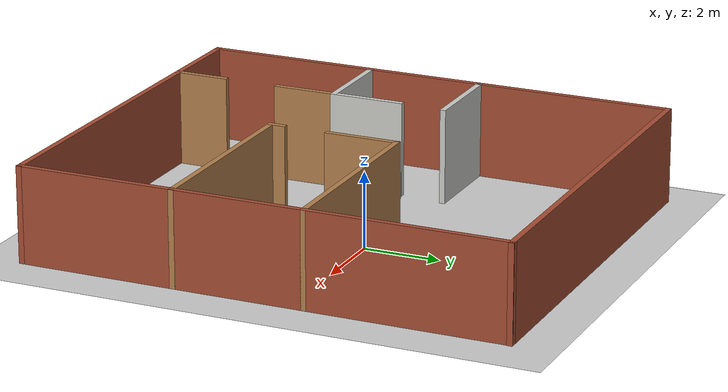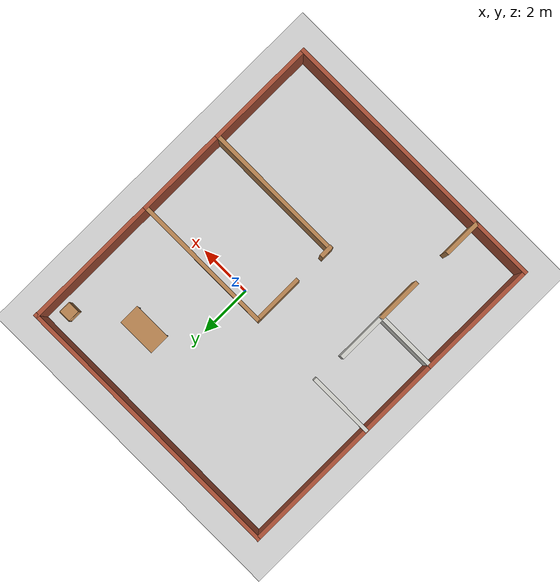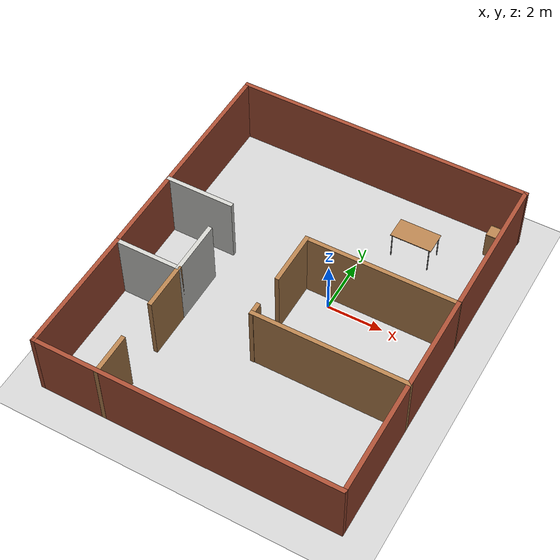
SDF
<sdf version="1.6">
 <world name="default">
  <model name="ground_plane">
   <static>1</static>
   <link name="link">
    <collision name="collision">
     <geometry><plane><normal>0 0 1</normal><size>100 100</size></plane></geometry>
     <surface>
      <contact><collide_bitmask>65535</collide_bitmask></contact>
      <friction><ode><mu>100</mu><mu2>50</mu2></ode></friction>
     </surface>
    </collision>
    <visual name="visual">
     <cast_shadows>0</cast_shadows>
     <geometry><plane><normal>0 0 1</normal><size>100 100</size></plane></geometry>
     <material>
      <script><uri>file://media/materials/scripts/gazebo.material</uri><name>Gazebo/Grey</name></script>
     </material>
    </visual>
   </link>
  </model>
  <model name="mybuilding">
   <pose>-0.984529 -0.77435 0 0 -0 0</pose>
   <link name="Wall_1">
    <collision name="Wall_1_Collision">
     <geometry><box><size>10.75 0.15 2.5</size></box></geometry>
     <pose>0 0 1.25 0 -0 0</pose>
    </collision>
    <visual name="Wall_1_Visual">
     <pose>0 0 1.25 0 -0 0</pose>
     <geometry><box><size>10.75 0.15 2.5</size></box></geometry>
     <material>
      <script><uri>file://media/materials/scripts/gazebo.material</uri><name>Gazebo/Bricks</name></script>
      <ambient>1 0.764706 0.305882 1</ambient>
     </material>
     <meta><layer>0</layer></meta>
    </visual>
    <pose>0.007558 6.36268 0 0 -0 0</pose>
   </link>
   <link name="Wall_2">
    <collision name="Wall_2_Collision">
     <geometry><box><size>5.34469 0.15 2.5</size></box></geometry>
     <pose>0 0 1.25 0 -0 0</pose>
    </collision>
    <visual name="Wall_2_Visual">
     <pose>0 0 1.25 0 -0 0</pose>
     <geometry><box><size>5.34469 0.15 2.5</size></box></geometry>
     <material>
      <script><uri>file://media/materials/scripts/gazebo.material</uri><name>Gazebo/Bricks</name></script>
      <ambient>1 0.764706 0.305882 1</ambient>
     </material>
     <meta><layer>0</layer></meta>
    </visual>
    <pose>5.29235 3.76538 0 0 -0 -1.5708</pose>
   </link>
   <link name="Wall_20">
    <collision name="Wall_20_Collision">
     <geometry><box><size>2.46292 0.15 2.5</size></box></geometry>
     <pose>0 0 1.25 0 -0 0</pose>
    </collision>
    <visual name="Wall_20_Visual">
     <pose>0 0 1.25 0 -0 0</pose>
     <geometry><box><size>2.46292 0.15 2.5</size></box></geometry>
     <material>
      <script><uri>file://media/materials/scripts/gazebo.material</uri><name>Gazebo/CeilingTiled</name></script>
      <ambient>0.435294 0.796078 0.67451 1</ambient>
     </material>
     <meta><layer>0</layer></meta>
    </visual>
    <pose>-4.13693 -1.86591 0 0 -0 -3.14159</pose>
   </link>
   <link name="Wall_21">
    <collision name="Wall_21_Collision">
     <geometry><box><size>8.25 0.15 2.5</size></box></geometry>
     <pose>0 0 1.25 0 -0 0</pose>
    </collision>
    <visual name="Wall_21_Visual">
     <pose>0 0 1.25 0 -0 0</pose>
     <geometry><box><size>8.25 0.15 2.5</size></box></geometry>
     <material>
      <script><uri>file://media/materials/scripts/gazebo.material</uri><name>Gazebo/Bricks</name></script>
      <ambient>1 0.764706 0.305882 1</ambient>
     </material>
     <meta><layer>0</layer></meta>
    </visual>
    <pose>-5.29339 2.18409 0 0 -0 1.5708</pose>
   </link>
   <link name="Wall_23">
    <collision name="Wall_23_Collision">
     <geometry><box><size>2 0.15 2.5</size></box></geometry>
     <pose>0 0 1.25 0 -0 0</pose>
    </collision>
    <visual name="Wall_23_Visual">
     <pose>0 0 1.25 0 -0 0</pose>
     <geometry><box><size>2 0.15 2.5</size></box></geometry>
     <material>
      <script><uri>file://media/materials/scripts/gazebo.material</uri><name>Gazebo/CeilingTiled</name></script>
      <ambient>0.996078 0.47451 0.0196078 1</ambient>
     </material>
     <meta><layer>0</layer></meta>
    </visual>
    <pose>-2.98047 -0.940907 0 0 -0 1.5708</pose>
   </link>
   <link name="Wall_26">
    <collision name="Wall_26_Collision">
     <geometry><box><size>4.25 0.15 2.5</size></box></geometry>
     <pose>0 0 1.25 0 -0 0</pose>
    </collision>
    <visual name="Wall_26_Visual">
     <pose>0 0 1.25 0 -0 0</pose>
     <geometry><box><size>4.25 0.15 2.5</size></box></geometry>
     <material>
      <script><uri>file://media/materials/scripts/gazebo.material</uri><name>Gazebo/Bricks</name></script>
      <ambient>0.435294 0.796078 0.67451 1</ambient>
     </material>
     <meta><layer>0</layer></meta>
    </visual>
    <pose>5.29268 -4.30974 0 0 -0 -1.5708</pose>
   </link>
   <link name="Wall_27">
    <collision name="Wall_27_Collision">
     <geometry><box><size>10.75 0.15 2.5</size></box></geometry>
     <pose>0 0 1.25 0 -0 0</pose>
    </collision>
    <visual name="Wall_27_Visual">
     <pose>0 0 1.25 0 -0 0</pose>
     <geometry><box><size>10.75 0.15 2.5</size></box></geometry>
     <material>
      <script><uri>file://media/materials/scripts/gazebo.material</uri><name>Gazebo/Bricks</name></script>
      <ambient>0.435294 0.796078 0.67451 1</ambient>
     </material>
     <meta><layer>0</layer></meta>
    </visual>
    <pose>-0.007325 -6.35974 0 0 -0 3.14159</pose>
   </link>
   <link name="Wall_28">
    <collision name="Wall_28_Collision">
     <geometry><box><size>4.6445 0.15 2.5</size></box></geometry>
     <pose>0 0 1.25 0 -0 0</pose>
    </collision>
    <visual name="Wall_28_Visual">
     <pose>0 0 1.25 0 -0 0</pose>
     <geometry><box><size>4.6445 0.15 2.5</size></box></geometry>
     <material>
      <script><uri>file://media/materials/scripts/gazebo.material</uri><name>Gazebo/Bricks</name></script>
      <ambient>0.435294 0.796078 0.67451 1</ambient>
     </material>
     <meta><layer>0</layer></meta>
    </visual>
    <pose>-5.30036 -4.11282 0 0 -0 1.5677</pose>
   </link>
   <link name="Wall_3">
    <collision name="Wall_3_Collision">
     <geometry><box><size>5.5 0.15 2.5</size></box></geometry>
     <pose>0 0 1.25 0 -0 0</pose>
    </collision>
    <visual name="Wall_3_Visual">
     <pose>0 0 1.25 0 -0 0</pose>
     <geometry><box><size>5.5 0.15 2.5</size></box></geometry>
     <material>
      <script><uri>file://media/materials/scripts/gazebo.material</uri><name>Gazebo/Wood</name></script>
      <ambient>0.996078 0.47451 0.0196078 1</ambient>
     </material>
     <meta><layer>0</layer></meta>
    </visual>
    <pose>2.61735 1.16808 0 0 -0 3.14159</pose>
   </link>
   <link name="Wall_32">
    <collision name="Wall_32_Collision">
     <geometry><box><size>1.5 0.15 2.5</size></box></geometry>
     <pose>0 0 1.25 0 -0 0</pose>
    </collision>
    <visual name="Wall_32_Visual">
     <pose>0 0 1.25 0 -0 0</pose>
     <geometry><box><size>1.5 0.15 2.5</size></box></geometry>
     <material>
      <script><uri>file://media/materials/scripts/gazebo.material</uri><name>Gazebo/Wood</name></script>
      <ambient>0.435294 0.796078 0.67451 1</ambient>
     </material>
     <meta><layer>0</layer></meta>
    </visual>
    <pose>-2.9997 -5.68773 0 0 -0 1.5708</pose>
   </link>
   <link name="Wall_34">
    <collision name="Wall_34_Collision">
     <geometry><box><size>1.75 0.15 2.5</size></box></geometry>
     <pose>0 0 1.25 0 -0 0</pose>
    </collision>
    <visual name="Wall_34_Visual">
     <pose>0 0 1.25 0 -0 0</pose>
     <geometry><box><size>1.75 0.15 2.5</size></box></geometry>
     <material>
      <script><uri>file://media/materials/scripts/gazebo.material</uri><name>Gazebo/Wood</name></script>
      <ambient>0.435294 0.796078 0.67451 1</ambient>
     </material>
     <meta><layer>0</layer></meta>
    </visual>
    <pose>-2.98047 -2.66591 0 0 -0 -1.5708</pose>
   </link>
   <link name="Wall_36">
    <collision name="Wall_36_Collision">
     <geometry><box><size>2.5 0.15 2.5</size></box></geometry>
     <pose>0 0 1.25 0 -0 0</pose>
    </collision>
    <visual name="Wall_36_Visual">
     <pose>0 0 1.25 0 -0 0</pose>
     <geometry><box><size>2.5 0.15 2.5</size></box></geometry>
     <material>
      <script><uri>file://media/materials/scripts/gazebo.material</uri><name>Gazebo/CeilingTiled</name></script>
      <ambient>0.996078 0.47451 0.0196078 1</ambient>
     </material>
     <meta><layer>0</layer></meta>
    </visual>
    <pose>-4.09706 1.21375 0 0 -0 0</pose>
   </link>
   <link name="Wall_4">
    <collision name="Wall_4_Collision">
     <geometry><box><size>2 0.15 2.5</size></box></geometry>
     <pose>0 0 1.25 0 -0 0</pose>
    </collision>
    <visual name="Wall_4_Visual">
     <pose>0 0 1.25 0 -0 0</pose>
     <geometry><box><size>2 0.15 2.5</size></box></geometry>
     <material>
      <script><uri>file://media/materials/scripts/gazebo.material</uri><name>Gazebo/Wood</name></script>
      <ambient>0.996078 0.47451 0.0196078 1</ambient>
     </material>
     <meta><layer>0</layer></meta>
    </visual>
    <pose>-0.05765 0.243083 0 0 -0 -1.5708</pose>
   </link>
   <link name="Wall_7">
    <collision name="Wall_7_Collision">
     <geometry><box><size>0.5 0.15 2.5</size></box></geometry>
     <pose>0 0 1.25 0 -0 0</pose>
    </collision>
    <visual name="Wall_7_Visual">
     <pose>0 0 1.25 0 -0 0</pose>
     <geometry><box><size>0.5 0.15 2.5</size></box></geometry>
     <material>
      <script><uri>file://media/materials/scripts/gazebo.material</uri><name>Gazebo/Wood</name></script>
      <ambient>0.996078 0.47451 0.0196078 1</ambient>
     </material>
     <meta><layer>0</layer></meta>
    </visual>
    <pose>-0.072534 -2.09995 0 0 -0 -1.5708</pose>
   </link>
   <link name="Wall_8">
    <collision name="Wall_8_Collision">
     <geometry><box><size>5.51555 0.15 2.5</size></box></geometry>
     <pose>0 0 1.25 0 -0 0</pose>
    </collision>
    <visual name="Wall_8_Visual">
     <pose>0 0 1.25 0 -0 0</pose>
     <geometry><box><size>5.51555 0.15 2.5</size></box></geometry>
     <material>
      <script><uri>file://media/materials/scripts/gazebo.material</uri><name>Gazebo/Wood</name></script>
      <ambient>0.435294 0.796078 0.67451 1</ambient>
     </material>
     <meta><layer>0</layer></meta>
    </visual>
    <pose>2.61007 -2.25974 0 0 -0 0</pose>
   </link>
   <link name="Wall_9">
    <collision name="Wall_9_Collision">
     <geometry><box><size>3.57785 0.15 2.5</size></box></geometry>
     <pose>0 0 1.25 0 -0 0</pose>
    </collision>
    <visual name="Wall_9_Visual">
     <pose>0 0 1.25 0 -0 0</pose>
     <geometry><box><size>3.57785 0.15 2.5</size></box></geometry>
     <material>
      <script><uri>file://media/materials/scripts/gazebo.material</uri><name>Gazebo/Bricks</name></script>
      <ambient>0.996078 0.47451 0.0196078 1</ambient>
     </material>
     <meta><layer>0</layer></meta>
    </visual>
    <pose>5.29251 -0.54583 0 0 -0 1.57089</pose>
   </link>
   <static>1</static>
  </model>
  <model name="cabinet">
   <static>1</static>
   <link name="cabinet_bottom_plate">
    <inertial>
     <pose>0 0 -1 0 -0 0</pose>
     <inertia><ixx>2.05</ixx><ixy>0</ixy><ixz>0</ixz><iyy>2.05</iyy><iyz>0</iyz><izz>2.05</izz></inertia>
     <mass>25</mass>
    </inertial>
    <collision name="cabinet_bottom_plate_geom">
     <pose>0 0 0.01 0 -0 0</pose>
     <geometry><box><size>0.45 0.45 0.02</size></box></geometry>
    </collision>
    <visual name="cabinet_bottom_plate_geom_visual">
     <pose>0 0 0.01 0 -0 0</pose>
     <geometry><box><size>0.45 0.45 0.02</size></box></geometry>
     <material>
      <script><uri>file://media/materials/scripts/gazebo.material</uri><name>Gazebo/Wood</name></script>
     </material>
    </visual>
    <collision name="cabinet_bottom_plate_geom_cabinet_back_plate">
     <pose>0.235 0 0.51 0 -0 0</pose>
     <geometry><box><size>0.02 0.45 1.02</size></box></geometry>
    </collision>
    <visual name="cabinet_bottom_plate_geom_cabinet_back_plate_visual">
     <pose>0.235 0 0.51 0 -0 0</pose>
     <geometry><box><size>0.02 0.45 1.02</size></box></geometry>
     <material>
      <script><uri>file://media/materials/scripts/gazebo.material</uri><name>Gazebo/Wood</name></script>
     </material>
    </visual>
    <collision name="cabinet_bottom_plate_geom_cabinet_left_plate">
     <pose>0 0.235 0.51 0 -0 0</pose>
     <geometry><box><size>0.45 0.02 1.02</size></box></geometry>
    </collision>
    <visual name="cabinet_bottom_plate_geom_cabinet_left_plate_visual">
     <pose>0 0.235 0.51 0 -0 0</pose>
     <geometry><box><size>0.45 0.02 1.02</size></box></geometry>
     <material>
      <script><uri>file://media/materials/scripts/gazebo.material</uri><name>Gazebo/Wood</name></script>
     </material>
    </visual>
    <collision name="cabinet_bottom_plate_geom_cabinet_middle_plate">
     <pose>0 0 0.51 0 -0 0</pose>
     <geometry><box><size>0.45 0.45 0.02</size></box></geometry>
    </collision>
    <visual name="cabinet_bottom_plate_geom_cabinet_middle_plate_visual">
     <pose>0 0 0.51 0 -0 0</pose>
     <geometry><box><size>0.45 0.45 0.02</size></box></geometry>
     <material>
      <script><uri>file://media/materials/scripts/gazebo.material</uri><name>Gazebo/Wood</name></script>
     </material>
    </visual>
    <collision name="cabinet_bottom_plate_geom_cabinet_right_plate">
     <pose>0 -0.235 0.51 0 -0 0</pose>
     <geometry><box><size>0.45 0.02 1.02</size></box></geometry>
    </collision>
    <visual name="cabinet_bottom_plate_geom_cabinet_right_plate_visual">
     <pose>0 -0.235 0.51 0 -0 0</pose>
     <geometry><box><size>0.45 0.02 1.02</size></box></geometry>
     <material>
      <script><uri>file://media/materials/scripts/gazebo.material</uri><name>Gazebo/Wood</name></script>
     </material>
    </visual>
    <collision name="cabinet_bottom_plate_geom_cabinet_top_plate">
     <pose>0 0 1.01 0 -0 0</pose>
     <geometry><box><size>0.45 0.45 0.02</size></box></geometry>
    </collision>
    <visual name="cabinet_bottom_plate_geom_cabinet_top_plate_visual">
     <pose>0 0 1.01 0 -0 0</pose>
     <geometry><box><size>0.45 0.45 0.02</size></box></geometry>
     <material>
      <script><uri>file://media/materials/scripts/gazebo.material</uri><name>Gazebo/Wood</name></script>
     </material>
    </visual>
   </link>
   <pose>3.75301 4.7992 0 0 -0 0</pose>
  </model>
  <model name="table">
   <static>1</static>
   <link name="link">
    <collision name="surface">
     <pose>0 0 1 0 -0 0</pose>
     <geometry><box><size>1.5 0.8 0.03</size></box></geometry>
     <surface><friction><ode><mu>0.6</mu><mu2>0.6</mu2></ode></friction></surface>
    </collision>
    <visual name="visual1">
     <pose>0 0 1 0 -0 0</pose>
     <geometry><box><size>1.5 0.8 0.03</size></box></geometry>
     <material>
      <script><uri>file://media/materials/scripts/gazebo.material</uri><name>Gazebo/Wood</name></script>
     </material>
    </visual>
    <collision name="front_left_leg">
     <pose>0.68 0.38 0.5 0 -0 0</pose>
     <geometry><cylinder><radius>0.02</radius><length>1</length></cylinder></geometry>
    </collision>
    <visual name="front_left_leg">
     <pose>0.68 0.38 0.5 0 -0 0</pose>
     <geometry><cylinder><radius>0.02</radius><length>1</length></cylinder></geometry>
     <material>
      <script><uri>file://media/materials/scripts/gazebo.material</uri><name>Gazebo/Grey</name></script>
     </material>
    </visual>
    <collision name="front_right_leg">
     <pose>0.68 -0.38 0.5 0 -0 0</pose>
     <geometry><cylinder><radius>0.02</radius><length>1</length></cylinder></geometry>
    </collision>
    <visual name="front_right_leg">
     <pose>0.68 -0.38 0.5 0 -0 0</pose>
     <geometry><cylinder><radius>0.02</radius><length>1</length></cylinder></geometry>
     <material>
      <script><uri>file://media/materials/scripts/gazebo.material</uri><name>Gazebo/Grey</name></script>
     </material>
    </visual>
    <collision name="back_right_leg">
     <pose>-0.68 -0.38 0.5 0 -0 0</pose>
     <geometry><cylinder><radius>0.02</radius><length>1</length></cylinder></geometry>
    </collision>
    <visual name="back_right_leg">
     <pose>-0.68 -0.38 0.5 0 -0 0</pose>
     <geometry><cylinder><radius>0.02</radius><length>1</length></cylinder></geometry>
     <material>
      <script><uri>file://media/materials/scripts/gazebo.material</uri><name>Gazebo/Grey</name></script>
     </material>
    </visual>
    <collision name="back_left_leg">
     <pose>-0.68 0.38 0.5 0 -0 0</pose>
     <geometry><cylinder><radius>0.02</radius><length>1</length></cylinder></geometry>
    </collision>
    <visual name="back_left_leg">
     <pose>-0.68 0.38 0.5 0 -0 0</pose>
     <geometry><cylinder><radius>0.02</radius><length>1</length></cylinder></geometry>
     <material>
      <script><uri>file://media/materials/scripts/gazebo.material</uri><name>Gazebo/Grey</name></script>
     </material>
    </visual>
   </link>
   <pose>1.4914 3.39779 0 0 -0 0</pose>
  </model>
 </world>
</sdf>
